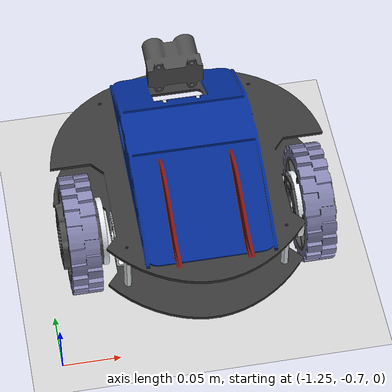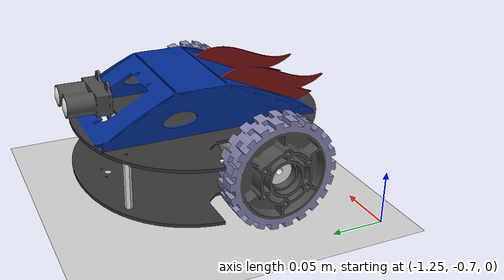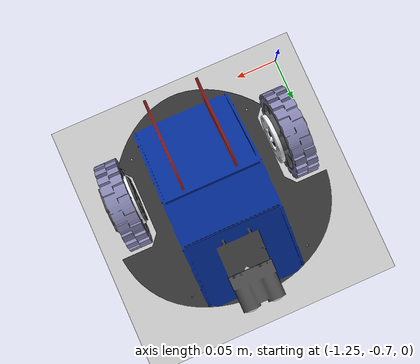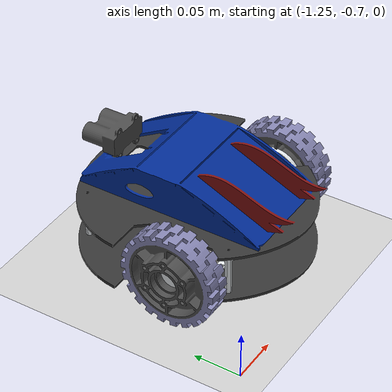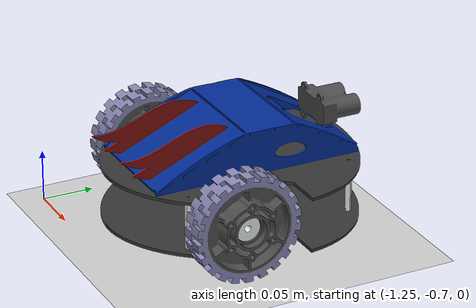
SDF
<?xml version="1.0" ?>
<sdf version="1.5">
  <world name="default">
    <!-- A global light source -->
    <include>
      <uri>model://sun</uri>
    </include>
    <!-- A ground plane -->
    <include>
      <uri>model://ground_plane</uri>
    </include>

    <!-- A wheeled robot -->
    <model name="wheeled_robot">
      <include>
        <uri>model://wheeled_robot</uri>
        <pose> -1.1366 -0.3222 -0.01 0 0 0</pose>
      </include>

      <!-- Attach the plugin to this model -->
      <plugin name="wrobot_control" filename="libwrobot_plugin.so"/>
      <plugin name="gazebo_ros_api_plugin" filename="libgazebo_ros_api_plugin.so"/>
    </model>
  </world>
</sdf>

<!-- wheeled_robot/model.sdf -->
<sdf version='1.4'>
	<model name="wheeled_robot">
		<static>false</static>
		<link name='chassis'>
			<pose>0 0 0.0508 1.5707 0 0</pose>
			<inertial>
				<pose>0.01 0.01 0.20 1.5707 0 0</pose>
			    <mass>1.01</mass>
		    </inertial>

			<collision name='collision'>
				<pose>0.02  0.0270 .25 1.5707 0 0</pose>
				<geometry>
					<box>
						<size> .2393 .2404 .12</size>
					</box>
				</geometry>
			</collision>

			<visual name='visual'>
				<geometry>
					<mesh>
						<uri>model://wrobot/meshes/chasis.dae</uri>
					</mesh>
				</geometry>
			</visual>

			<collision name='caster_collision'>
				<pose>0.02 -.0195 0.165 0 0 0</pose>
				<geometry>
					<sphere>
						<radius>.00950</radius>
					</sphere>
				</geometry>
				<surface>
					<friction>
						<ode>
							<mu>0</mu>
							<mu2>0</mu2>
							<slip1>1.0</slip1>
							<slip2>1.0</slip2>
						</ode>
					</friction>
				</surface>
			</collision>

			<visual name='caster_visual'>
				<pose>0.02 -.0195 0.165 0 0 0</pose>
				<geometry>
					<sphere>
						<radius>0.00950</radius>
					</sphere>
				</geometry>
			</visual>
		</link>

		<link name="left_wheel">
			<pose>0.125 -0.283 0.065 0 0 0</pose>
			<collision name="collision">
				<pose>0 0 0 0 1.5707 0</pose>
				<geometry>
					<cylinder>
						<radius>0.0508</radius>
						<length>.035</length>
					</cylinder>
				</geometry>
			</collision>
			<visual name="visual">
				<geometry>
					<mesh>
						<uri>model://wrobot/meshes/wheel.dae</uri>
					</mesh>
				</geometry>
			</visual>
		</link>

		<link name="lidar">
			<pose>0.035 -0.174 0.05 0 0 0</pose>
			<collision name="collision">
				<geometry>
					<box>
						<size> .01 .01 .01</size>
					</box>
				</geometry>
			</collision>
			<visual name="visual">
				<geometry>
					<mesh>
						<uri>model://wrobot/meshes/lidar.dae</uri>
					</mesh>
				</geometry>
			</visual>

			<sensor type="camera" name="camera1">
				<pose>0.035 -0.10 0.25 0 0 1.5707</pose>
				<plugin name="gazebo_ros_camera" filename="libgazebo_ros_camera.so">
			        <alwaysOn>true</alwaysOn>
			        <updateRate>0.0</updateRate>
			        <robotNamespace>wrobot</robotNamespace>
			        <cameraName>head</cameraName>
			        <imageTopicName>image_raw</imageTopicName>
			        <cameraInfoTopicName>camera_info</cameraInfoTopicName>
			        <frameName>lidar_sensor</frameName>
			        <hackBaseline>0.07</hackBaseline>
			        <distortionK1>0.0</distortionK1>
			        <distortionK2>0.0</distortionK2>
			        <distortionK3>0.0</distortionK3>
			        <distortionT1>0.0</distortionT1>
			        <distortionT2>0.0</distortionT2>
		      	</plugin>
	    		<update_rate>30.0</update_rate>
				<camera name="head">
	        		<horizontal_fov>1.3962634</horizontal_fov>
	        		<image>
			          <width>800</width>
			          <height>800</height>
			          <format>R8G8B8</format>
	        		</image>
			        <clip>
			          <near>0.02</near>
			          <far>300</far>
			        </clip>
			        <noise>
			          <type>gaussian</type>
			          <mean>0.0</mean>
			          <stddev>0.007</stddev>
			        </noise>
	      		</camera>
    		</sensor>
		</link>

		<link name="right_wheel">
			<pose>-0.075 -0.283 0.065 0 0 0</pose>
			<collision name="collision">
				<pose>0 0 0 0 1.5707 0</pose>
				<geometry>
					<cylinder>
						<radius>0.0508</radius>
						<length>.035</length>
					</cylinder>
				</geometry>
			</collision>
			<visual name="visual">
				<geometry>
					<mesh>
						<uri>model://wrobot/meshes/wheel.dae</uri>
					</mesh>
				</geometry>
			</visual>
		</link>

		<joint type="revolute" name="left_wheel_hinge">
			<pose>0 -0.002 0.002 0 0 0</pose>
			<child>left_wheel</child>
			<parent>chassis</parent>
			<axis>
				<xyz>-1 0 0</xyz>
			</axis>
		</joint>
		<joint type="revolute" name="right_wheel_hinge">
			<pose>-0.01 -0.002 0.002 0 0 0</pose>
			<child>right_wheel</child>
			<parent>chassis</parent>
			<axis>
				<xyz>-1 0 0</xyz>
			</axis>
		</joint>

		<joint type="fixed" name="lidar_joint">
			<pose>0 0 0 0 0 0</pose>
			<child>lidar</child>
			<parent>chassis</parent>
			<axis>
				<xyz>0 1 0</xyz>
			</axis>
		</joint>
	</model>

</sdf>
